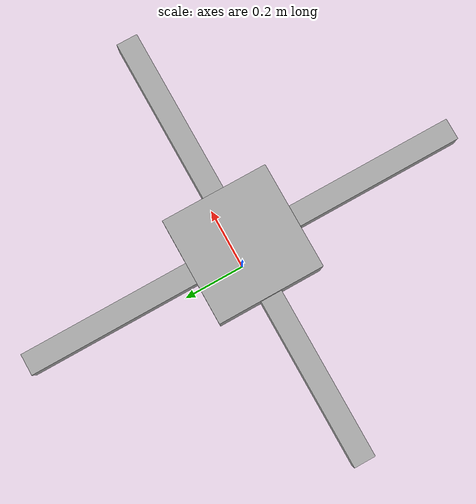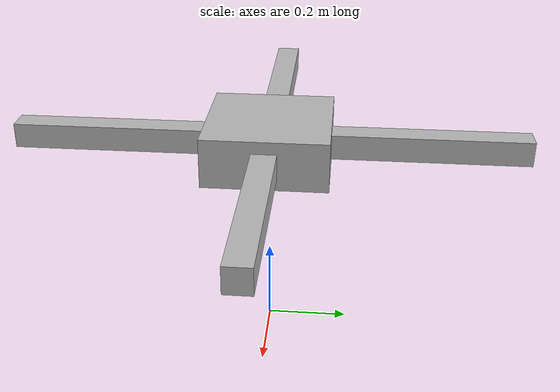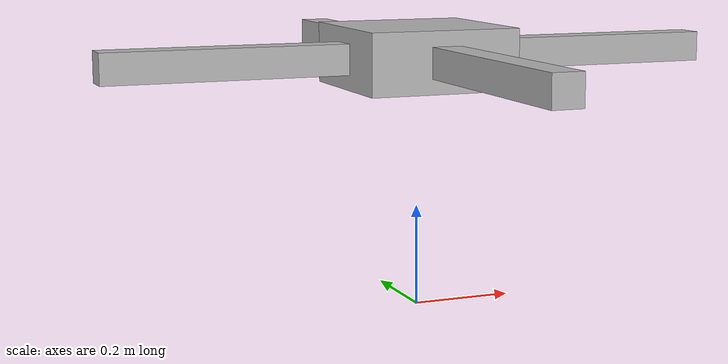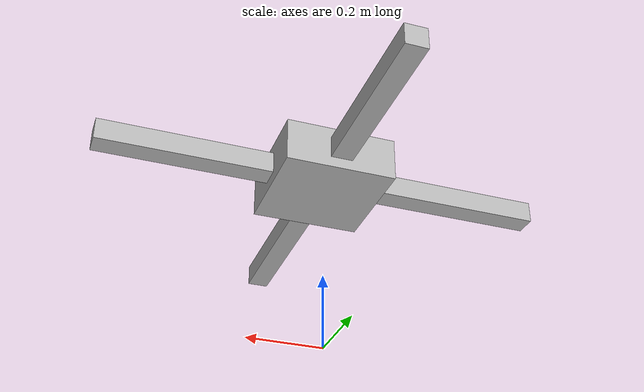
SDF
<?xml version="1.0" ?>
<sdf version="1.10">

  <model name="quadricoptero">

    <!-- Corpo central -->
    <link name="corpo">

      <pose>0 0 0.5 0 0 0</pose>

      <inertial>
        <mass>1.5</mass>
        <inertia>
          <ixx>0.02</ixx>
          <iyy>0.02</iyy>
          <izz>0.03</izz>
          <ixy>0</ixy>
          <ixz>0</ixz>
          <iyz>0</iyz>
        </inertia>
      </inertial>

      <!-- Corpo físico -->
      <collision name="collision">
        <geometry>
          <box>
            <size>0.30 0.30 0.12</size>
          </box>
        </geometry>
      </collision>

      <!-- Corpo visual -->
      <visual name="visual">
        <geometry>
          <box>
            <size>0.30 0.30 0.12</size>
          </box>
        </geometry>
      </visual>

    </link>

    <!-- Braço 1 -->
    <link name="braco1">
      <pose>0.35 0 0.5 0 0 0</pose>
      <visual name="visual">
        <geometry>
          <box>
            <size>0.55 0.06 0.06</size>
          </box>
        </geometry>
      </visual>
    </link>

    <!-- Braço 2 -->
    <link name="braco2">
      <pose>-0.35 0 0.5 0 0 0</pose>
      <visual name="visual">
        <geometry>
          <box>
            <size>0.55 0.06 0.06</size>
          </box>
        </geometry>
      </visual>
    </link>

    <!-- Braço 3 -->
    <link name="braco3">
      <pose>0 0.35 0.5 0 0 0</pose>
      <visual name="visual">
        <geometry>
          <box>
            <size>0.06 0.55 0.06</size>
          </box>
        </geometry>
      </visual>
    </link>

    <!-- Braço 4 -->
    <link name="braco4">
      <pose>0 -0.35 0.5 0 0 0</pose>
      <visual name="visual">
        <geometry>
          <box>
            <size>0.06 0.55 0.06</size>
          </box>
        </geometry>
      </visual>
    </link>

  </model>

</sdf>
